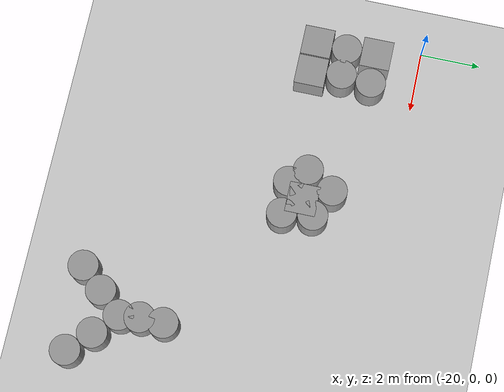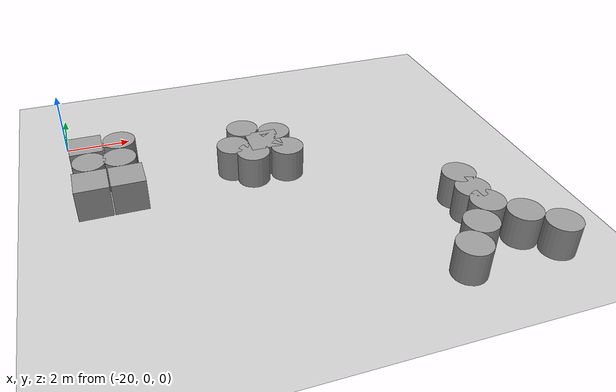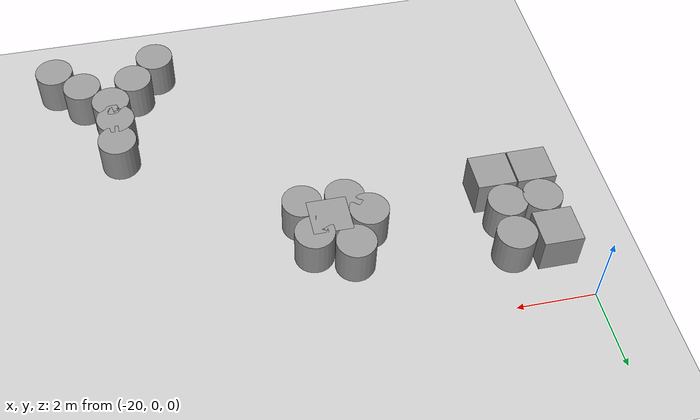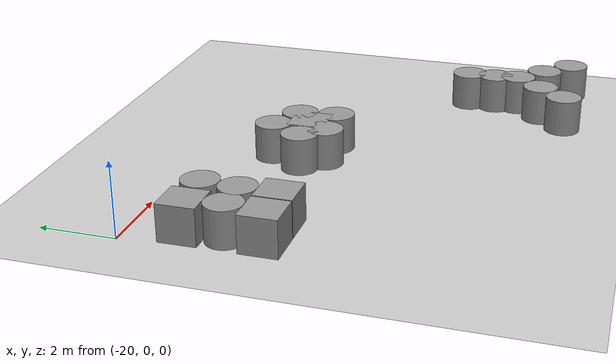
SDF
<sdf version="1.6">
 <world name="default">
  <model name="ground_plane">
   <static>1</static>
   <link name="link">
    <collision name="collision">
     <geometry><plane><normal>0 0 1</normal><size>100 100</size></plane></geometry>
     <surface><friction><ode><mu>100</mu><mu2>50</mu2></ode></friction></surface>
    </collision>
    <visual name="visual">
     <cast_shadows>0</cast_shadows>
     <geometry><plane><normal>0 0 1</normal><size>100 100</size></plane></geometry>
     <material>
      <script><uri>file://media/materials/scripts/gazebo.material</uri><name>Gazebo/Grey</name></script>
     </material>
    </visual>
   </link>
  </model>
  <model name="machine2_clone_0_clone_0">
   <link name="link_6">
    <pose>0.153167 -0.028269 0 0 -0 0</pose>
    <inertial>
     <mass>1</mass>
     <inertia>
      <ixx>0.166667</ixx>
      <ixy>0</ixy>
      <ixz>0</ixz>
      <iyy>0.166667</iyy>
      <iyz>0</iyz>
      <izz>0.166667</izz>
     </inertia>
    </inertial>
    <visual name="visual">
     <geometry><box><size>1 1 1</size></box></geometry>
     <material>
      <lighting>1</lighting>
      <script><uri>file://media/materials/scripts/gazebo.material</uri><name>Gazebo/Grey</name></script>
      <ambient>0.3 0.3 0.3 1</ambient>
      <diffuse>0.7 0.7 0.7 1</diffuse>
      <specular>0.01 0.01 0.01 1</specular>
      <emissive>0 0 0 1</emissive>
     </material>
    </visual>
    <collision name="collision">
     <geometry><box><size>1 1 1</size></box></geometry>
     <surface>
      <friction>
       <ode><mu>1</mu><mu2>1</mu2><fdir1>0 0 0</fdir1><slip1>0</slip1><slip2>0</slip2></ode>
       <torsional>
        <coefficient>1</coefficient>
        <patch_radius>0</patch_radius>
        <surface_radius>0</surface_radius>
        <use_patch_radius>1</use_patch_radius>
        <ode><slip>0</slip></ode>
       </torsional>
      </friction>
      <bounce><restitution_coefficient>0</restitution_coefficient><threshold>1e+06</threshold></bounce>
      <contact>
       <collide_without_contact>0</collide_without_contact>
       <collide_without_contact_bitmask>1</collide_without_contact_bitmask>
       <collide_bitmask>1</collide_bitmask>
       <ode>
        <soft_cfm>0</soft_cfm>
        <soft_erp>0.2</soft_erp>
        <kp>1e+13</kp>
        <kd>1</kd>
        <max_vel>0.01</max_vel>
        <min_depth>0</min_depth>
       </ode>
       <bullet>
        <split_impulse>1</split_impulse>
        <split_impulse_penetration_threshold>-0.01</split_impulse_penetration_threshold>
        <soft_cfm>0</soft_cfm>
        <soft_erp>0.2</soft_erp>
        <kp>1e+13</kp>
        <kd>1</kd>
       </bullet>
      </contact>
     </surface>
    </collision>
   </link>
   <link name="link_10">
    <pose>0.61205 0.404825 0 0 -0 0</pose>
    <inertial>
     <mass>1</mass>
     <inertia><ixx>0.145833</ixx><ixy>0</ixy><ixz>0</ixz><iyy>0.145833</iyy><iyz>0</iyz><izz>0.125</izz></inertia>
    </inertial>
    <visual name="visual">
     <geometry><cylinder><radius>0.5</radius><length>1</length></cylinder></geometry>
     <material>
      <lighting>1</lighting>
      <script><uri>file://media/materials/scripts/gazebo.material</uri><name>Gazebo/Grey</name></script>
      <ambient>0.3 0.3 0.3 1</ambient>
      <diffuse>0.7 0.7 0.7 1</diffuse>
      <specular>0.01 0.01 0.01 1</specular>
      <emissive>0 0 0 1</emissive>
     </material>
    </visual>
    <collision name="collision">
     <geometry><cylinder><radius>0.5</radius><length>1</length></cylinder></geometry>
     <surface>
      <friction>
       <ode><mu>1</mu><mu2>1</mu2><fdir1>0 0 0</fdir1><slip1>0</slip1><slip2>0</slip2></ode>
       <torsional>
        <coefficient>1</coefficient>
        <patch_radius>0</patch_radius>
        <surface_radius>0</surface_radius>
        <use_patch_radius>1</use_patch_radius>
        <ode><slip>0</slip></ode>
       </torsional>
      </friction>
      <bounce><restitution_coefficient>0</restitution_coefficient><threshold>1e+06</threshold></bounce>
      <contact>
       <collide_without_contact>0</collide_without_contact>
       <collide_without_contact_bitmask>1</collide_without_contact_bitmask>
       <collide_bitmask>1</collide_bitmask>
       <ode>
        <soft_cfm>0</soft_cfm>
        <soft_erp>0.2</soft_erp>
        <kp>1e+13</kp>
        <kd>1</kd>
        <max_vel>0.01</max_vel>
        <min_depth>0</min_depth>
       </ode>
       <bullet>
        <split_impulse>1</split_impulse>
        <split_impulse_penetration_threshold>-0.01</split_impulse_penetration_threshold>
        <soft_cfm>0</soft_cfm>
        <soft_erp>0.2</soft_erp>
        <kp>1e+13</kp>
        <kd>1</kd>
       </bullet>
      </contact>
     </surface>
    </collision>
   </link>
   <link name="link_11">
    <pose>0.739497 -0.595175 0 0 -0 0</pose>
    <inertial>
     <mass>1</mass>
     <inertia><ixx>0.145833</ixx><ixy>0</ixy><ixz>0</ixz><iyy>0.145833</iyy><iyz>0</iyz><izz>0.125</izz></inertia>
    </inertial>
    <visual name="visual">
     <geometry><cylinder><radius>0.5</radius><length>1</length></cylinder></geometry>
     <material>
      <lighting>1</lighting>
      <script><uri>file://media/materials/scripts/gazebo.material</uri><name>Gazebo/Grey</name></script>
      <ambient>0.3 0.3 0.3 1</ambient>
      <diffuse>0.7 0.7 0.7 1</diffuse>
      <specular>0.01 0.01 0.01 1</specular>
      <emissive>0 0 0 1</emissive>
     </material>
    </visual>
    <collision name="collision">
     <geometry><cylinder><radius>0.5</radius><length>1</length></cylinder></geometry>
     <surface>
      <friction>
       <ode><mu>1</mu><mu2>1</mu2><fdir1>0 0 0</fdir1><slip1>0</slip1><slip2>0</slip2></ode>
       <torsional>
        <coefficient>1</coefficient>
        <patch_radius>0</patch_radius>
        <surface_radius>0</surface_radius>
        <use_patch_radius>1</use_patch_radius>
        <ode><slip>0</slip></ode>
       </torsional>
      </friction>
      <bounce><restitution_coefficient>0</restitution_coefficient><threshold>1e+06</threshold></bounce>
      <contact>
       <collide_without_contact>0</collide_without_contact>
       <collide_without_contact_bitmask>1</collide_without_contact_bitmask>
       <collide_bitmask>1</collide_bitmask>
       <ode>
        <soft_cfm>0</soft_cfm>
        <soft_erp>0.2</soft_erp>
        <kp>1e+13</kp>
        <kd>1</kd>
        <max_vel>0.01</max_vel>
        <min_depth>0</min_depth>
       </ode>
       <bullet>
        <split_impulse>1</split_impulse>
        <split_impulse_penetration_threshold>-0.01</split_impulse_penetration_threshold>
        <soft_cfm>0</soft_cfm>
        <soft_erp>0.2</soft_erp>
        <kp>1e+13</kp>
        <kd>1</kd>
       </bullet>
      </contact>
     </surface>
    </collision>
   </link>
   <link name="link_12">
    <pose>-0.316153 0.858024 0 0 -0 0</pose>
    <inertial>
     <mass>1</mass>
     <inertia><ixx>0.145833</ixx><ixy>0</ixy><ixz>0</ixz><iyy>0.145833</iyy><iyz>0</iyz><izz>0.125</izz></inertia>
    </inertial>
    <visual name="visual">
     <geometry><cylinder><radius>0.5</radius><length>1</length></cylinder></geometry>
     <material>
      <lighting>1</lighting>
      <script><uri>file://media/materials/scripts/gazebo.material</uri><name>Gazebo/Grey</name></script>
      <ambient>0.3 0.3 0.3 1</ambient>
      <diffuse>0.7 0.7 0.7 1</diffuse>
      <specular>0.01 0.01 0.01 1</specular>
      <emissive>0 0 0 1</emissive>
     </material>
    </visual>
    <collision name="collision">
     <geometry><cylinder><radius>0.5</radius><length>1</length></cylinder></geometry>
     <surface>
      <friction>
       <ode><mu>1</mu><mu2>1</mu2><fdir1>0 0 0</fdir1><slip1>0</slip1><slip2>0</slip2></ode>
       <torsional>
        <coefficient>1</coefficient>
        <patch_radius>0</patch_radius>
        <surface_radius>0</surface_radius>
        <use_patch_radius>1</use_patch_radius>
        <ode><slip>0</slip></ode>
       </torsional>
      </friction>
      <bounce><restitution_coefficient>0</restitution_coefficient><threshold>1e+06</threshold></bounce>
      <contact>
       <collide_without_contact>0</collide_without_contact>
       <collide_without_contact_bitmask>1</collide_without_contact_bitmask>
       <collide_bitmask>1</collide_bitmask>
       <ode>
        <soft_cfm>0</soft_cfm>
        <soft_erp>0.2</soft_erp>
        <kp>1e+13</kp>
        <kd>1</kd>
        <max_vel>0.01</max_vel>
        <min_depth>0</min_depth>
       </ode>
       <bullet>
        <split_impulse>1</split_impulse>
        <split_impulse_penetration_threshold>-0.01</split_impulse_penetration_threshold>
        <soft_cfm>0</soft_cfm>
        <soft_erp>0.2</soft_erp>
        <kp>1e+13</kp>
        <kd>1</kd>
       </bullet>
      </contact>
     </surface>
    </collision>
   </link>
   <link name="link_8">
    <pose>-0.846833 -0.044231 0 0 -0 0</pose>
    <inertial>
     <mass>1</mass>
     <inertia><ixx>0.145833</ixx><ixy>0</ixy><ixz>0</ixz><iyy>0.145833</iyy><iyz>0</iyz><izz>0.125</izz></inertia>
    </inertial>
    <visual name="visual">
     <geometry><cylinder><radius>0.5</radius><length>1</length></cylinder></geometry>
     <material>
      <lighting>1</lighting>
      <script><uri>file://media/materials/scripts/gazebo.material</uri><name>Gazebo/Grey</name></script>
      <ambient>0.3 0.3 0.3 1</ambient>
      <diffuse>0.7 0.7 0.7 1</diffuse>
      <specular>0.01 0.01 0.01 1</specular>
      <emissive>0 0 0 1</emissive>
     </material>
    </visual>
    <collision name="collision">
     <geometry><cylinder><radius>0.5</radius><length>1</length></cylinder></geometry>
     <surface>
      <friction>
       <ode><mu>1</mu><mu2>1</mu2><fdir1>0 0 0</fdir1><slip1>0</slip1><slip2>0</slip2></ode>
       <torsional>
        <coefficient>1</coefficient>
        <patch_radius>0</patch_radius>
        <surface_radius>0</surface_radius>
        <use_patch_radius>1</use_patch_radius>
        <ode><slip>0</slip></ode>
       </torsional>
      </friction>
      <bounce><restitution_coefficient>0</restitution_coefficient><threshold>1e+06</threshold></bounce>
      <contact>
       <collide_without_contact>0</collide_without_contact>
       <collide_without_contact_bitmask>1</collide_without_contact_bitmask>
       <collide_bitmask>1</collide_bitmask>
       <ode>
        <soft_cfm>0</soft_cfm>
        <soft_erp>0.2</soft_erp>
        <kp>1e+13</kp>
        <kd>1</kd>
        <max_vel>0.01</max_vel>
        <min_depth>0</min_depth>
       </ode>
       <bullet>
        <split_impulse>1</split_impulse>
        <split_impulse_penetration_threshold>-0.01</split_impulse_penetration_threshold>
        <soft_cfm>0</soft_cfm>
        <soft_erp>0.2</soft_erp>
        <kp>1e+13</kp>
        <kd>1</kd>
       </bullet>
      </contact>
     </surface>
    </collision>
   </link>
   <link name="link_9">
    <pose>-0.34172 -0.595175 0 0 -0 0</pose>
    <inertial>
     <mass>1</mass>
     <inertia><ixx>0.145833</ixx><ixy>0</ixy><ixz>0</ixz><iyy>0.145833</iyy><iyz>0</iyz><izz>0.125</izz></inertia>
    </inertial>
    <visual name="visual">
     <geometry><cylinder><radius>0.5</radius><length>1</length></cylinder></geometry>
     <material>
      <lighting>1</lighting>
      <script><uri>file://media/materials/scripts/gazebo.material</uri><name>Gazebo/Grey</name></script>
      <ambient>0.3 0.3 0.3 1</ambient>
      <diffuse>0.7 0.7 0.7 1</diffuse>
      <specular>0.01 0.01 0.01 1</specular>
      <emissive>0 0 0 1</emissive>
     </material>
    </visual>
    <collision name="collision">
     <geometry><cylinder><radius>0.5</radius><length>1</length></cylinder></geometry>
     <surface>
      <friction>
       <ode><mu>1</mu><mu2>1</mu2><fdir1>0 0 0</fdir1><slip1>0</slip1><slip2>0</slip2></ode>
       <torsional>
        <coefficient>1</coefficient>
        <patch_radius>0</patch_radius>
        <surface_radius>0</surface_radius>
        <use_patch_radius>1</use_patch_radius>
        <ode><slip>0</slip></ode>
       </torsional>
      </friction>
      <bounce><restitution_coefficient>0</restitution_coefficient><threshold>1e+06</threshold></bounce>
      <contact>
       <collide_without_contact>0</collide_without_contact>
       <collide_without_contact_bitmask>1</collide_without_contact_bitmask>
       <collide_bitmask>1</collide_bitmask>
       <ode>
        <soft_cfm>0</soft_cfm>
        <soft_erp>0.2</soft_erp>
        <kp>1e+13</kp>
        <kd>1</kd>
        <max_vel>0.01</max_vel>
        <min_depth>0</min_depth>
       </ode>
       <bullet>
        <split_impulse>1</split_impulse>
        <split_impulse_penetration_threshold>-0.01</split_impulse_penetration_threshold>
        <soft_cfm>0</soft_cfm>
        <soft_erp>0.2</soft_erp>
        <kp>1e+13</kp>
        <kd>1</kd>
       </bullet>
      </contact>
     </surface>
    </collision>
   </link>
   <static>0</static>
   <pose>-14.1885 -2.85266 0.5 0 -0 0</pose>
  </model>
  <model name="machine5_0">
   <link name="link_25">
    <pose>1.75317 -0.214523 0 0 -0 0</pose>
    <inertial>
     <mass>1</mass>
     <inertia><ixx>0.145833</ixx><ixy>0</ixy><ixz>0</ixz><iyy>0.145833</iyy><iyz>0</iyz><izz>0.125</izz></inertia>
    </inertial>
    <visual name="visual">
     <geometry><cylinder><radius>0.5</radius><length>1</length></cylinder></geometry>
     <material>
      <lighting>1</lighting>
      <script><uri>file://media/materials/scripts/gazebo.material</uri><name>Gazebo/Grey</name></script>
      <ambient>0.3 0.3 0.3 1</ambient>
      <diffuse>0.7 0.7 0.7 1</diffuse>
      <specular>0.01 0.01 0.01 1</specular>
      <emissive>0 0 0 1</emissive>
     </material>
    </visual>
    <collision name="collision">
     <geometry><cylinder><radius>0.5</radius><length>1</length></cylinder></geometry>
     <surface>
      <friction>
       <ode><mu>1</mu><mu2>1</mu2><fdir1>0 0 0</fdir1><slip1>0</slip1><slip2>0</slip2></ode>
       <torsional>
        <coefficient>1</coefficient>
        <patch_radius>0</patch_radius>
        <surface_radius>0</surface_radius>
        <use_patch_radius>1</use_patch_radius>
        <ode><slip>0</slip></ode>
       </torsional>
      </friction>
      <bounce><restitution_coefficient>0</restitution_coefficient><threshold>1e+06</threshold></bounce>
      <contact>
       <collide_without_contact>0</collide_without_contact>
       <collide_without_contact_bitmask>1</collide_without_contact_bitmask>
       <collide_bitmask>1</collide_bitmask>
       <ode>
        <soft_cfm>0</soft_cfm>
        <soft_erp>0.2</soft_erp>
        <kp>1e+13</kp>
        <kd>1</kd>
        <max_vel>0.01</max_vel>
        <min_depth>0</min_depth>
       </ode>
       <bullet>
        <split_impulse>1</split_impulse>
        <split_impulse_penetration_threshold>-0.01</split_impulse_penetration_threshold>
        <soft_cfm>0</soft_cfm>
        <soft_erp>0.2</soft_erp>
        <kp>1e+13</kp>
        <kd>1</kd>
       </bullet>
      </contact>
     </surface>
    </collision>
   </link>
   <link name="link_26">
    <pose>0.765019 -0.214523 0 0 -0 0</pose>
    <inertial>
     <mass>1</mass>
     <inertia><ixx>0.145833</ixx><ixy>0</ixy><ixz>0</ixz><iyy>0.145833</iyy><iyz>0</iyz><izz>0.125</izz></inertia>
    </inertial>
    <visual name="visual">
     <geometry><cylinder><radius>0.5</radius><length>1</length></cylinder></geometry>
     <material>
      <lighting>1</lighting>
      <script><uri>file://media/materials/scripts/gazebo.material</uri><name>Gazebo/Grey</name></script>
      <ambient>0.3 0.3 0.3 1</ambient>
      <diffuse>0.7 0.7 0.7 1</diffuse>
      <specular>0.01 0.01 0.01 1</specular>
      <emissive>0 0 0 1</emissive>
     </material>
    </visual>
    <collision name="collision">
     <geometry><cylinder><radius>0.5</radius><length>1</length></cylinder></geometry>
     <surface>
      <friction>
       <ode><mu>1</mu><mu2>1</mu2><fdir1>0 0 0</fdir1><slip1>0</slip1><slip2>0</slip2></ode>
       <torsional>
        <coefficient>1</coefficient>
        <patch_radius>0</patch_radius>
        <surface_radius>0</surface_radius>
        <use_patch_radius>1</use_patch_radius>
        <ode><slip>0</slip></ode>
       </torsional>
      </friction>
      <bounce><restitution_coefficient>0</restitution_coefficient><threshold>1e+06</threshold></bounce>
      <contact>
       <collide_without_contact>0</collide_without_contact>
       <collide_without_contact_bitmask>1</collide_without_contact_bitmask>
       <collide_bitmask>1</collide_bitmask>
       <ode>
        <soft_cfm>0</soft_cfm>
        <soft_erp>0.2</soft_erp>
        <kp>1e+13</kp>
        <kd>1</kd>
        <max_vel>0.01</max_vel>
        <min_depth>0</min_depth>
       </ode>
       <bullet>
        <split_impulse>1</split_impulse>
        <split_impulse_penetration_threshold>-0.01</split_impulse_penetration_threshold>
        <soft_cfm>0</soft_cfm>
        <soft_erp>0.2</soft_erp>
        <kp>1e+13</kp>
        <kd>1</kd>
       </bullet>
      </contact>
     </surface>
    </collision>
   </link>
   <link name="link_27">
    <pose>-0.229545 -0.214523 0 0 -0 0</pose>
    <inertial>
     <mass>1</mass>
     <inertia><ixx>0.145833</ixx><ixy>0</ixy><ixz>0</ixz><iyy>0.145833</iyy><iyz>0</iyz><izz>0.125</izz></inertia>
    </inertial>
    <visual name="visual">
     <geometry><cylinder><radius>0.5</radius><length>1</length></cylinder></geometry>
     <material>
      <lighting>1</lighting>
      <script><uri>file://media/materials/scripts/gazebo.material</uri><name>Gazebo/Grey</name></script>
      <ambient>0.3 0.3 0.3 1</ambient>
      <diffuse>0.7 0.7 0.7 1</diffuse>
      <specular>0.01 0.01 0.01 1</specular>
      <emissive>0 0 0 1</emissive>
     </material>
    </visual>
    <collision name="collision">
     <geometry><cylinder><radius>0.5</radius><length>1</length></cylinder></geometry>
     <surface>
      <friction>
       <ode><mu>1</mu><mu2>1</mu2><fdir1>0 0 0</fdir1><slip1>0</slip1><slip2>0</slip2></ode>
       <torsional>
        <coefficient>1</coefficient>
        <patch_radius>0</patch_radius>
        <surface_radius>0</surface_radius>
        <use_patch_radius>1</use_patch_radius>
        <ode><slip>0</slip></ode>
       </torsional>
      </friction>
      <bounce><restitution_coefficient>0</restitution_coefficient><threshold>1e+06</threshold></bounce>
      <contact>
       <collide_without_contact>0</collide_without_contact>
       <collide_without_contact_bitmask>1</collide_without_contact_bitmask>
       <collide_bitmask>1</collide_bitmask>
       <ode>
        <soft_cfm>0</soft_cfm>
        <soft_erp>0.2</soft_erp>
        <kp>1e+13</kp>
        <kd>1</kd>
        <max_vel>0.01</max_vel>
        <min_depth>0</min_depth>
       </ode>
       <bullet>
        <split_impulse>1</split_impulse>
        <split_impulse_penetration_threshold>-0.01</split_impulse_penetration_threshold>
        <soft_cfm>0</soft_cfm>
        <soft_erp>0.2</soft_erp>
        <kp>1e+13</kp>
        <kd>1</kd>
       </bullet>
      </contact>
     </surface>
    </collision>
   </link>
   <link name="link_28">
    <pose>-0.194579 0.785477 0 0 -0 0</pose>
    <inertial>
     <mass>1</mass>
     <inertia><ixx>0.145833</ixx><ixy>0</ixy><ixz>0</ixz><iyy>0.145833</iyy><iyz>0</iyz><izz>0.125</izz></inertia>
    </inertial>
    <visual name="visual">
     <geometry><cylinder><radius>0.5</radius><length>1</length></cylinder></geometry>
     <material>
      <lighting>1</lighting>
      <script><uri>file://media/materials/scripts/gazebo.material</uri><name>Gazebo/Grey</name></script>
      <ambient>0.3 0.3 0.3 1</ambient>
      <diffuse>0.7 0.7 0.7 1</diffuse>
      <specular>0.01 0.01 0.01 1</specular>
      <emissive>0 0 0 1</emissive>
     </material>
    </visual>
    <collision name="collision">
     <geometry><cylinder><radius>0.5</radius><length>1</length></cylinder></geometry>
     <surface>
      <friction>
       <ode><mu>1</mu><mu2>1</mu2><fdir1>0 0 0</fdir1><slip1>0</slip1><slip2>0</slip2></ode>
       <torsional>
        <coefficient>1</coefficient>
        <patch_radius>0</patch_radius>
        <surface_radius>0</surface_radius>
        <use_patch_radius>1</use_patch_radius>
        <ode><slip>0</slip></ode>
       </torsional>
      </friction>
      <bounce><restitution_coefficient>0</restitution_coefficient><threshold>1e+06</threshold></bounce>
      <contact>
       <collide_without_contact>0</collide_without_contact>
       <collide_without_contact_bitmask>1</collide_without_contact_bitmask>
       <collide_bitmask>1</collide_bitmask>
       <ode>
        <soft_cfm>0</soft_cfm>
        <soft_erp>0.2</soft_erp>
        <kp>1e+13</kp>
        <kd>1</kd>
        <max_vel>0.01</max_vel>
        <min_depth>0</min_depth>
       </ode>
       <bullet>
        <split_impulse>1</split_impulse>
        <split_impulse_penetration_threshold>-0.01</split_impulse_penetration_threshold>
        <soft_cfm>0</soft_cfm>
        <soft_erp>0.2</soft_erp>
        <kp>1e+13</kp>
        <kd>1</kd>
       </bullet>
      </contact>
     </surface>
    </collision>
   </link>
   <link name="link_29">
    <pose>-0.141509 1.78548 0 0 -0 0</pose>
    <inertial>
     <mass>1</mass>
     <inertia><ixx>0.145833</ixx><ixy>0</ixy><ixz>0</ixz><iyy>0.145833</iyy><iyz>0</iyz><izz>0.125</izz></inertia>
    </inertial>
    <visual name="visual">
     <geometry><cylinder><radius>0.5</radius><length>1</length></cylinder></geometry>
     <material>
      <lighting>1</lighting>
      <script><uri>file://media/materials/scripts/gazebo.material</uri><name>Gazebo/Grey</name></script>
      <ambient>0.3 0.3 0.3 1</ambient>
      <diffuse>0.7 0.7 0.7 1</diffuse>
      <specular>0.01 0.01 0.01 1</specular>
      <emissive>0 0 0 1</emissive>
     </material>
    </visual>
    <collision name="collision">
     <geometry><cylinder><radius>0.5</radius><length>1</length></cylinder></geometry>
     <surface>
      <friction>
       <ode><mu>1</mu><mu2>1</mu2><fdir1>0 0 0</fdir1><slip1>0</slip1><slip2>0</slip2></ode>
       <torsional>
        <coefficient>1</coefficient>
        <patch_radius>0</patch_radius>
        <surface_radius>0</surface_radius>
        <use_patch_radius>1</use_patch_radius>
        <ode><slip>0</slip></ode>
       </torsional>
      </friction>
      <bounce><restitution_coefficient>0</restitution_coefficient><threshold>1e+06</threshold></bounce>
      <contact>
       <collide_without_contact>0</collide_without_contact>
       <collide_without_contact_bitmask>1</collide_without_contact_bitmask>
       <collide_bitmask>1</collide_bitmask>
       <ode>
        <soft_cfm>0</soft_cfm>
        <soft_erp>0.2</soft_erp>
        <kp>1e+13</kp>
        <kd>1</kd>
        <max_vel>0.01</max_vel>
        <min_depth>0</min_depth>
       </ode>
       <bullet>
        <split_impulse>1</split_impulse>
        <split_impulse_penetration_threshold>-0.01</split_impulse_penetration_threshold>
        <soft_cfm>0</soft_cfm>
        <soft_erp>0.2</soft_erp>
        <kp>1e+13</kp>
        <kd>1</kd>
       </bullet>
      </contact>
     </surface>
    </collision>
   </link>
   <link name="link_30">
    <pose>-0.682121 -0.712863 0 0 -0 0</pose>
    <inertial>
     <mass>1</mass>
     <inertia><ixx>0.145833</ixx><ixy>0</ixy><ixz>0</ixz><iyy>0.145833</iyy><iyz>0</iyz><izz>0.125</izz></inertia>
    </inertial>
    <visual name="visual">
     <geometry><cylinder><radius>0.5</radius><length>1</length></cylinder></geometry>
     <material>
      <lighting>1</lighting>
      <script><uri>file://media/materials/scripts/gazebo.material</uri><name>Gazebo/Grey</name></script>
      <ambient>0.3 0.3 0.3 1</ambient>
      <diffuse>0.7 0.7 0.7 1</diffuse>
      <specular>0.01 0.01 0.01 1</specular>
      <emissive>0 0 0 1</emissive>
     </material>
    </visual>
    <collision name="collision">
     <geometry><cylinder><radius>0.5</radius><length>1</length></cylinder></geometry>
     <surface>
      <friction>
       <ode><mu>1</mu><mu2>1</mu2><fdir1>0 0 0</fdir1><slip1>0</slip1><slip2>0</slip2></ode>
       <torsional>
        <coefficient>1</coefficient>
        <patch_radius>0</patch_radius>
        <surface_radius>0</surface_radius>
        <use_patch_radius>1</use_patch_radius>
        <ode><slip>0</slip></ode>
       </torsional>
      </friction>
      <bounce><restitution_coefficient>0</restitution_coefficient><threshold>1e+06</threshold></bounce>
      <contact>
       <collide_without_contact>0</collide_without_contact>
       <collide_without_contact_bitmask>1</collide_without_contact_bitmask>
       <collide_bitmask>1</collide_bitmask>
       <ode>
        <soft_cfm>0</soft_cfm>
        <soft_erp>0.2</soft_erp>
        <kp>1e+13</kp>
        <kd>1</kd>
        <max_vel>0.01</max_vel>
        <min_depth>0</min_depth>
       </ode>
       <bullet>
        <split_impulse>1</split_impulse>
        <split_impulse_penetration_threshold>-0.01</split_impulse_penetration_threshold>
        <soft_cfm>0</soft_cfm>
        <soft_erp>0.2</soft_erp>
        <kp>1e+13</kp>
        <kd>1</kd>
       </bullet>
      </contact>
     </surface>
    </collision>
   </link>
   <link name="link_31">
    <pose>-1.27043 -1.21452 0 0 -0 0</pose>
    <inertial>
     <mass>1</mass>
     <inertia><ixx>0.145833</ixx><ixy>0</ixy><ixz>0</ixz><iyy>0.145833</iyy><iyz>0</iyz><izz>0.125</izz></inertia>
    </inertial>
    <visual name="visual">
     <geometry><cylinder><radius>0.5</radius><length>1</length></cylinder></geometry>
     <material>
      <lighting>1</lighting>
      <script><uri>file://media/materials/scripts/gazebo.material</uri><name>Gazebo/Grey</name></script>
      <ambient>0.3 0.3 0.3 1</ambient>
      <diffuse>0.7 0.7 0.7 1</diffuse>
      <specular>0.01 0.01 0.01 1</specular>
      <emissive>0 0 0 1</emissive>
     </material>
    </visual>
    <collision name="collision">
     <geometry><cylinder><radius>0.5</radius><length>1</length></cylinder></geometry>
     <surface>
      <friction>
       <ode><mu>1</mu><mu2>1</mu2><fdir1>0 0 0</fdir1><slip1>0</slip1><slip2>0</slip2></ode>
       <torsional>
        <coefficient>1</coefficient>
        <patch_radius>0</patch_radius>
        <surface_radius>0</surface_radius>
        <use_patch_radius>1</use_patch_radius>
        <ode><slip>0</slip></ode>
       </torsional>
      </friction>
      <bounce><restitution_coefficient>0</restitution_coefficient><threshold>1e+06</threshold></bounce>
      <contact>
       <collide_without_contact>0</collide_without_contact>
       <collide_without_contact_bitmask>1</collide_without_contact_bitmask>
       <collide_bitmask>1</collide_bitmask>
       <ode>
        <soft_cfm>0</soft_cfm>
        <soft_erp>0.2</soft_erp>
        <kp>1e+13</kp>
        <kd>1</kd>
        <max_vel>0.01</max_vel>
        <min_depth>0</min_depth>
       </ode>
       <bullet>
        <split_impulse>1</split_impulse>
        <split_impulse_penetration_threshold>-0.01</split_impulse_penetration_threshold>
        <soft_cfm>0</soft_cfm>
        <soft_erp>0.2</soft_erp>
        <kp>1e+13</kp>
        <kd>1</kd>
       </bullet>
      </contact>
     </surface>
    </collision>
   </link>
   <static>0</static>
   <pose>-9.10003 -8.14288 0.499942 0 0 -2.3</pose>
  </model>
  <model name="machine3_1">
   <link name="link_13">
    <pose>-0.503159 1 0 0 -0 0</pose>
    <inertial>
     <mass>1</mass>
     <inertia>
      <ixx>0.166667</ixx>
      <ixy>0</ixy>
      <ixz>0</ixz>
      <iyy>0.166667</iyy>
      <iyz>0</iyz>
      <izz>0.166667</izz>
     </inertia>
    </inertial>
    <visual name="visual">
     <geometry><box><size>1 1 1</size></box></geometry>
     <material>
      <lighting>1</lighting>
      <script><uri>file://media/materials/scripts/gazebo.material</uri><name>Gazebo/Grey</name></script>
      <ambient>0.3 0.3 0.3 1</ambient>
      <diffuse>0.7 0.7 0.7 1</diffuse>
      <specular>0.01 0.01 0.01 1</specular>
      <emissive>0 0 0 1</emissive>
     </material>
    </visual>
    <collision name="collision">
     <geometry><box><size>1 1 1</size></box></geometry>
     <surface>
      <friction>
       <ode><mu>1</mu><mu2>1</mu2><fdir1>0 0 0</fdir1><slip1>0</slip1><slip2>0</slip2></ode>
       <torsional>
        <coefficient>1</coefficient>
        <patch_radius>0</patch_radius>
        <surface_radius>0</surface_radius>
        <use_patch_radius>1</use_patch_radius>
        <ode><slip>0</slip></ode>
       </torsional>
      </friction>
      <bounce><restitution_coefficient>0</restitution_coefficient><threshold>1e+06</threshold></bounce>
      <contact>
       <collide_without_contact>0</collide_without_contact>
       <collide_without_contact_bitmask>1</collide_without_contact_bitmask>
       <collide_bitmask>1</collide_bitmask>
       <ode>
        <soft_cfm>0</soft_cfm>
        <soft_erp>0.2</soft_erp>
        <kp>1e+13</kp>
        <kd>1</kd>
        <max_vel>0.01</max_vel>
        <min_depth>0</min_depth>
       </ode>
       <bullet>
        <split_impulse>1</split_impulse>
        <split_impulse_penetration_threshold>-0.01</split_impulse_penetration_threshold>
        <soft_cfm>0</soft_cfm>
        <soft_erp>0.2</soft_erp>
        <kp>1e+13</kp>
        <kd>1</kd>
       </bullet>
      </contact>
     </surface>
    </collision>
   </link>
   <link name="link_14">
    <pose>0.524915 1 0 0 -0 0</pose>
    <inertial>
     <mass>1</mass>
     <inertia><ixx>0.145833</ixx><ixy>0</ixy><ixz>0</ixz><iyy>0.145833</iyy><iyz>0</iyz><izz>0.125</izz></inertia>
    </inertial>
    <visual name="visual">
     <geometry><cylinder><radius>0.5</radius><length>1</length></cylinder></geometry>
     <material>
      <lighting>1</lighting>
      <script><uri>file://media/materials/scripts/gazebo.material</uri><name>Gazebo/Grey</name></script>
      <ambient>0.3 0.3 0.3 1</ambient>
      <diffuse>0.7 0.7 0.7 1</diffuse>
      <specular>0.01 0.01 0.01 1</specular>
      <emissive>0 0 0 1</emissive>
     </material>
    </visual>
    <collision name="collision">
     <geometry><cylinder><radius>0.5</radius><length>1</length></cylinder></geometry>
     <surface>
      <friction>
       <ode><mu>1</mu><mu2>1</mu2><fdir1>0 0 0</fdir1><slip1>0</slip1><slip2>0</slip2></ode>
       <torsional>
        <coefficient>1</coefficient>
        <patch_radius>0</patch_radius>
        <surface_radius>0</surface_radius>
        <use_patch_radius>1</use_patch_radius>
        <ode><slip>0</slip></ode>
       </torsional>
      </friction>
      <bounce><restitution_coefficient>0</restitution_coefficient><threshold>1e+06</threshold></bounce>
      <contact>
       <collide_without_contact>0</collide_without_contact>
       <collide_without_contact_bitmask>1</collide_without_contact_bitmask>
       <collide_bitmask>1</collide_bitmask>
       <ode>
        <soft_cfm>0</soft_cfm>
        <soft_erp>0.2</soft_erp>
        <kp>1e+13</kp>
        <kd>1</kd>
        <max_vel>0.01</max_vel>
        <min_depth>0</min_depth>
       </ode>
       <bullet>
        <split_impulse>1</split_impulse>
        <split_impulse_penetration_threshold>-0.01</split_impulse_penetration_threshold>
        <soft_cfm>0</soft_cfm>
        <soft_erp>0.2</soft_erp>
        <kp>1e+13</kp>
        <kd>1</kd>
       </bullet>
      </contact>
     </surface>
    </collision>
   </link>
   <link name="link_15">
    <pose>0.434688 0 0 0 -0 0</pose>
    <inertial>
     <mass>1</mass>
     <inertia><ixx>0.145833</ixx><ixy>0</ixy><ixz>0</ixz><iyy>0.145833</iyy><iyz>0</iyz><izz>0.125</izz></inertia>
    </inertial>
    <visual name="visual">
     <geometry><cylinder><radius>0.5</radius><length>1</length></cylinder></geometry>
     <material>
      <lighting>1</lighting>
      <script><uri>file://media/materials/scripts/gazebo.material</uri><name>Gazebo/Grey</name></script>
      <ambient>0.3 0.3 0.3 1</ambient>
      <diffuse>0.7 0.7 0.7 1</diffuse>
      <specular>0.01 0.01 0.01 1</specular>
      <emissive>0 0 0 1</emissive>
     </material>
    </visual>
    <collision name="collision">
     <geometry><cylinder><radius>0.5</radius><length>1</length></cylinder></geometry>
     <surface>
      <friction>
       <ode><mu>1</mu><mu2>1</mu2><fdir1>0 0 0</fdir1><slip1>0</slip1><slip2>0</slip2></ode>
       <torsional>
        <coefficient>1</coefficient>
        <patch_radius>0</patch_radius>
        <surface_radius>0</surface_radius>
        <use_patch_radius>1</use_patch_radius>
        <ode><slip>0</slip></ode>
       </torsional>
      </friction>
      <bounce><restitution_coefficient>0</restitution_coefficient><threshold>1e+06</threshold></bounce>
      <contact>
       <collide_without_contact>0</collide_without_contact>
       <collide_without_contact_bitmask>1</collide_without_contact_bitmask>
       <collide_bitmask>1</collide_bitmask>
       <ode>
        <soft_cfm>0</soft_cfm>
        <soft_erp>0.2</soft_erp>
        <kp>1e+13</kp>
        <kd>1</kd>
        <max_vel>0.01</max_vel>
        <min_depth>0</min_depth>
       </ode>
       <bullet>
        <split_impulse>1</split_impulse>
        <split_impulse_penetration_threshold>-0.01</split_impulse_penetration_threshold>
        <soft_cfm>0</soft_cfm>
        <soft_erp>0.2</soft_erp>
        <kp>1e+13</kp>
        <kd>1</kd>
       </bullet>
      </contact>
     </surface>
    </collision>
   </link>
   <link name="link_16">
    <pose>-0.471074 0 0 0 -0 0</pose>
    <inertial>
     <mass>1</mass>
     <inertia><ixx>0.145833</ixx><ixy>0</ixy><ixz>0</ixz><iyy>0.145833</iyy><iyz>0</iyz><izz>0.125</izz></inertia>
    </inertial>
    <visual name="visual">
     <geometry><cylinder><radius>0.5</radius><length>1</length></cylinder></geometry>
     <material>
      <lighting>1</lighting>
      <script><uri>file://media/materials/scripts/gazebo.material</uri><name>Gazebo/Grey</name></script>
      <ambient>0.3 0.3 0.3 1</ambient>
      <diffuse>0.7 0.7 0.7 1</diffuse>
      <specular>0.01 0.01 0.01 1</specular>
      <emissive>0 0 0 1</emissive>
     </material>
    </visual>
    <collision name="collision">
     <geometry><cylinder><radius>0.5</radius><length>1</length></cylinder></geometry>
     <surface>
      <friction>
       <ode><mu>1</mu><mu2>1</mu2><fdir1>0 0 0</fdir1><slip1>0</slip1><slip2>0</slip2></ode>
       <torsional>
        <coefficient>1</coefficient>
        <patch_radius>0</patch_radius>
        <surface_radius>0</surface_radius>
        <use_patch_radius>1</use_patch_radius>
        <ode><slip>0</slip></ode>
       </torsional>
      </friction>
      <bounce><restitution_coefficient>0</restitution_coefficient><threshold>1e+06</threshold></bounce>
      <contact>
       <collide_without_contact>0</collide_without_contact>
       <collide_without_contact_bitmask>1</collide_without_contact_bitmask>
       <collide_bitmask>1</collide_bitmask>
       <ode>
        <soft_cfm>0</soft_cfm>
        <soft_erp>0.2</soft_erp>
        <kp>1e+13</kp>
        <kd>1</kd>
        <max_vel>0.01</max_vel>
        <min_depth>0</min_depth>
       </ode>
       <bullet>
        <split_impulse>1</split_impulse>
        <split_impulse_penetration_threshold>-0.01</split_impulse_penetration_threshold>
        <soft_cfm>0</soft_cfm>
        <soft_erp>0.2</soft_erp>
        <kp>1e+13</kp>
        <kd>1</kd>
       </bullet>
      </contact>
     </surface>
    </collision>
   </link>
   <link name="link_17">
    <pose>-0.50937 -1 0 0 -0 0</pose>
    <inertial>
     <mass>1</mass>
     <inertia>
      <ixx>0.166667</ixx>
      <ixy>0</ixy>
      <ixz>0</ixz>
      <iyy>0.166667</iyy>
      <iyz>0</iyz>
      <izz>0.166667</izz>
     </inertia>
    </inertial>
    <visual name="visual">
     <geometry><box><size>1 1 1</size></box></geometry>
     <material>
      <lighting>1</lighting>
      <script><uri>file://media/materials/scripts/gazebo.material</uri><name>Gazebo/Grey</name></script>
      <ambient>0.3 0.3 0.3 1</ambient>
      <diffuse>0.7 0.7 0.7 1</diffuse>
      <specular>0.01 0.01 0.01 1</specular>
      <emissive>0 0 0 1</emissive>
     </material>
    </visual>
    <collision name="collision">
     <geometry><box><size>1 1 1</size></box></geometry>
     <surface>
      <friction>
       <ode><mu>1</mu><mu2>1</mu2><fdir1>0 0 0</fdir1><slip1>0</slip1><slip2>0</slip2></ode>
       <torsional>
        <coefficient>1</coefficient>
        <patch_radius>0</patch_radius>
        <surface_radius>0</surface_radius>
        <use_patch_radius>1</use_patch_radius>
        <ode><slip>0</slip></ode>
       </torsional>
      </friction>
      <bounce><restitution_coefficient>0</restitution_coefficient><threshold>1e+06</threshold></bounce>
      <contact>
       <collide_without_contact>0</collide_without_contact>
       <collide_without_contact_bitmask>1</collide_without_contact_bitmask>
       <collide_bitmask>1</collide_bitmask>
       <ode>
        <soft_cfm>0</soft_cfm>
        <soft_erp>0.2</soft_erp>
        <kp>1e+13</kp>
        <kd>1</kd>
        <max_vel>0.01</max_vel>
        <min_depth>0</min_depth>
       </ode>
       <bullet>
        <split_impulse>1</split_impulse>
        <split_impulse_penetration_threshold>-0.01</split_impulse_penetration_threshold>
        <soft_cfm>0</soft_cfm>
        <soft_erp>0.2</soft_erp>
        <kp>1e+13</kp>
        <kd>1</kd>
       </bullet>
      </contact>
     </surface>
    </collision>
   </link>
   <link name="link_18">
    <pose>0.524008 -1 0 0 -0 0</pose>
    <inertial>
     <mass>1</mass>
     <inertia>
      <ixx>0.166667</ixx>
      <ixy>0</ixy>
      <ixz>0</ixz>
      <iyy>0.166667</iyy>
      <iyz>0</iyz>
      <izz>0.166667</izz>
     </inertia>
    </inertial>
    <visual name="visual">
     <geometry><box><size>1 1 1</size></box></geometry>
     <material>
      <lighting>1</lighting>
      <script><uri>file://media/materials/scripts/gazebo.material</uri><name>Gazebo/Grey</name></script>
      <ambient>0.3 0.3 0.3 1</ambient>
      <diffuse>0.7 0.7 0.7 1</diffuse>
      <specular>0.01 0.01 0.01 1</specular>
      <emissive>0 0 0 1</emissive>
     </material>
    </visual>
    <collision name="collision">
     <geometry><box><size>1 1 1</size></box></geometry>
     <surface>
      <friction>
       <ode><mu>1</mu><mu2>1</mu2><fdir1>0 0 0</fdir1><slip1>0</slip1><slip2>0</slip2></ode>
       <torsional>
        <coefficient>1</coefficient>
        <patch_radius>0</patch_radius>
        <surface_radius>0</surface_radius>
        <use_patch_radius>1</use_patch_radius>
        <ode><slip>0</slip></ode>
       </torsional>
      </friction>
      <bounce><restitution_coefficient>0</restitution_coefficient><threshold>1e+06</threshold></bounce>
      <contact>
       <collide_without_contact>0</collide_without_contact>
       <collide_without_contact_bitmask>1</collide_without_contact_bitmask>
       <collide_bitmask>1</collide_bitmask>
       <ode>
        <soft_cfm>0</soft_cfm>
        <soft_erp>0.2</soft_erp>
        <kp>1e+13</kp>
        <kd>1</kd>
        <max_vel>0.01</max_vel>
        <min_depth>0</min_depth>
       </ode>
       <bullet>
        <split_impulse>1</split_impulse>
        <split_impulse_penetration_threshold>-0.01</split_impulse_penetration_threshold>
        <soft_cfm>0</soft_cfm>
        <soft_erp>0.2</soft_erp>
        <kp>1e+13</kp>
        <kd>1</kd>
       </bullet>
      </contact>
     </surface>
    </collision>
   </link>
   <static>0</static>
   <pose>-18.8841 -2.48711 0.5 0 -0 0</pose>
  </model>
 </world>
</sdf>
